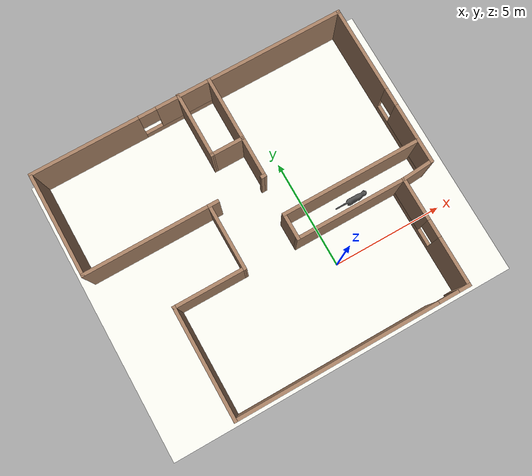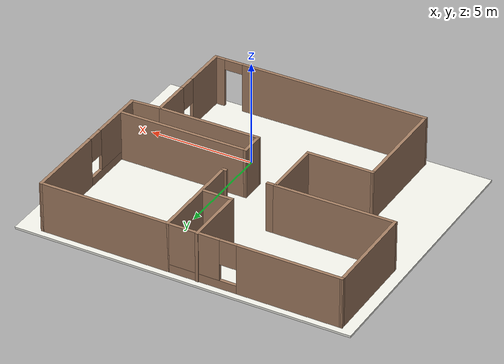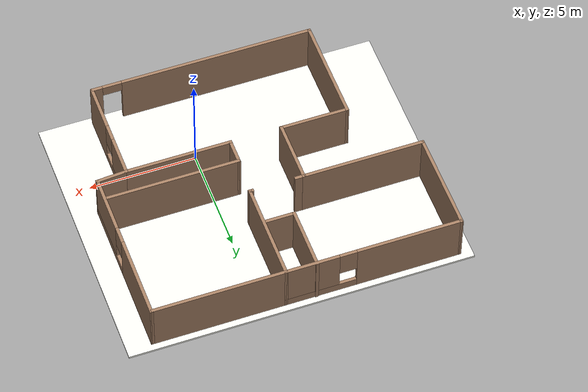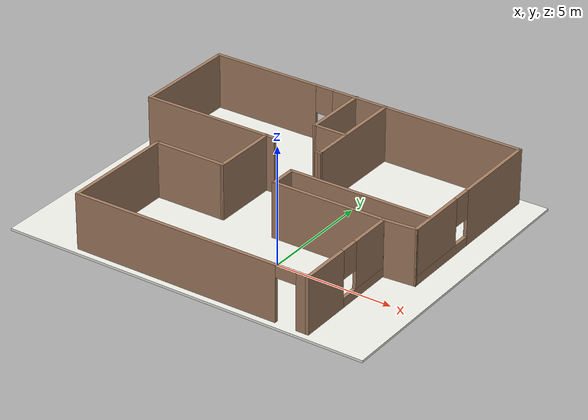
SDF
<sdf version='1.12'>
  <world name='default'>
    <gravity>0 0 -9.800</gravity>
    <magnetic_field>0.000 0.000 -0.000</magnetic_field>
    <atmosphere type='adiabatic'/>
    <physics type='ode'>
      <max_step_size>0.001</max_step_size>
      <real_time_factor>1</real_time_factor>
      <real_time_update_rate>1000</real_time_update_rate>
    </physics>

    <plugin
        filename="gz-sim-physics-system"
        name="gz::sim::systems::Physics">
    </plugin>

    <plugin
        filename="gz-sim-user-commands-system"
        name="gz::sim::systems::UserCommands">
    </plugin>

    <plugin
        filename="gz-sim-scene-broadcaster-system"
        name="gz::sim::systems::SceneBroadcaster">
    </plugin>

    <scene>
      <ambient>0.400 0.400 0.400 1</ambient>
      <background>0.700 0.700 0.700 1</background>
      <shadows>true</shadows>
    </scene>

    <model name="cat">
      <pose>2 2 0 0 0 0</pose>
      <static>false</static>

      <link name="body">
        <pose>0 0 0.2 0 0 0</pose>

        <!-- Main cat body visual -->
        <visual name="visual">
          <geometry>
            <mesh>
              <uri>file:///home/ismail/ros2_ws/src/cat_chaser/meshes/cat.dae</uri>
              <scale>0.2 0.2 0.2</scale>
            </mesh>
          </geometry>
          <pose>0 0 0 1.5708 0 0</pose>
          <material>
            <ambient>0.2 0.2 0.2 1</ambient>    <!-- Lighter gray -->
            <diffuse>0.3 0.3 0.3 1</diffuse>    <!-- Much lighter gray -->
            <specular>0.1 0.1 0.1 1</specular>
          </material>
        </visual>

        <!-- Left Eye -->
        <visual name="left_eye">
          <geometry>
            <sphere>
              <radius>0.015</radius>
            </sphere>
          </geometry>
          <!-- Cat's face is on positive X, eyes should be high up on Z -->
          <pose>0.505 -0.0345 0.564 1.5708 0 0</pose>
          <material>
            <ambient>1.0 0.8 0.0 1</ambient>
            <diffuse>1.0 0.9 0.2 1</diffuse>
            <specular>1.0 1.0 1.0 1</specular>
            <emissive>0.3 0.2 0.0 1</emissive>
          </material>
        </visual>

        <!-- Right Eye -->
        <visual name="right_eye">
          <geometry>
            <sphere>
              <radius>0.015</radius>
            </sphere>
          </geometry>
          <pose>0.505 0.0345 0.564 1.5708 0 0</pose>
          <material>
            <ambient>1.0 0.8 0.0 1</ambient>
            <diffuse>1.0 0.9 0.2 1</diffuse>
            <specular>1.0 1.0 1.0 1</specular>
            <emissive>0.3 0.2 0.0 1</emissive>
          </material>
        </visual>

        <!-- Left Eye Pupil -->
        <visual name="left_pupil">
          <geometry>
            <sphere>
              <radius>0.008</radius>
            </sphere>
          </geometry>
          <pose>0.5133 -0.0345 0.564 1.5708 0 0</pose>
          <material>
            <ambient>0.0 0.0 0.0 1</ambient>
            <diffuse>0.0 0.0 0.0 1</diffuse>
            <specular>0.0 0.0 0.0 1</specular>
          </material>
        </visual>

        <!-- Right Eye Pupil -->
        <visual name="right_pupil">
          <geometry>
            <sphere>
              <radius>0.008</radius>
            </sphere>
          </geometry>
          <pose>0.5133 0.0345 0.564 1.5708 0 0</pose>
          <material>
            <ambient>0.0 0.0 0.0 1</ambient>
            <diffuse>0.0 0.0 0.0 1</diffuse>
            <specular>0.0 0.0 0.0 1</specular>
          </material>
        </visual>

        <!-- Left Whiskers -->
        <visual name="left_whisker_1">
          <geometry>
            <cylinder>
              <radius>0.001</radius>
              <length>0.08</length>
            </cylinder>
          </geometry>
          <pose>0.548 -0.024 0.5123 1.5708 0 0</pose>
          <material>
            <ambient>1.0 1.0 1.0 1</ambient>
            <diffuse>1.0 1.0 1.0 1</diffuse>
            <specular>1.0 1.0 1.0 1</specular>
            <emissive>0.2 0.2 0.2 1</emissive>
          </material>
        </visual>

        <visual name="left_whisker_2">
          <geometry>
            <cylinder>
              <radius>0.001</radius>
              <length>0.08</length>
            </cylinder>
          </geometry>
          <pose>0.548 -0.024 0.505 1.5708 0 0</pose>
          <material>
            <ambient>1.0 1.0 1.0 1</ambient>
            <diffuse>1.0 1.0 1.0 1</diffuse>
            <specular>1.0 1.0 1.0 1</specular>
            <emissive>0.2 0.2 0.2 1</emissive>
          </material>
        </visual>

        <!-- Right Whiskers -->
        <visual name="right_whisker_1">
          <geometry>
            <cylinder>
              <radius>0.001</radius>
              <length>0.08</length>
            </cylinder>
          </geometry>
          <pose>0.548 0.024 0.5123 1.5708 0 0</pose>
          <material>
            <ambient>1.0 1.0 1.0 1</ambient>
            <diffuse>1.0 1.0 1.0 1</diffuse>
            <specular>1.0 1.0 1.0 1</specular>
            <emissive>0.2 0.2 0.2 1</emissive>
          </material>
        </visual>

        <visual name="right_whisker_2">
          <geometry>
            <cylinder>
              <radius>0.001</radius>
              <length>0.08</length>
            </cylinder>
          </geometry>
          <pose>0.548 0.024 0.505 1.5708 0 0</pose>
          <material>
            <ambient>1.0 1.0 1.0 1</ambient>
            <diffuse>1.0 1.0 1.0 1</diffuse>
            <specular>1.0 1.0 1.0 1</specular>
            <emissive>0.2 0.2 0.2 1</emissive>
          </material>
        </visual>

        <!-- Pink Nose -->
        <visual name="nose">
          <geometry>
            <sphere>
              <radius>0.008</radius>
            </sphere>
          </geometry>
          <pose>0.548 0 0.515 1.5708 0 0</pose>
          <material>
            <ambient>1.0 0.2 0.4 1</ambient>
            <diffuse>1.0 0.4 0.6 1</diffuse>
            <specular>0.5 0.5 0.5 1</specular>
            <emissive>0.2 0.05 0.1 1</emissive>
          </material>
        </visual>

        <!-- Collision (same as before) -->
        <collision name="collision">
          <geometry>
            <box>
              <size>0.12 0.06 0.09</size>
            </box>
          </geometry>
          <pose>0 0 0 1.5708 0 0</pose>
        </collision>

        <!-- Inertial properties (same as before) -->
        <inertial>
          <mass>1.0</mass>
          <pose>0 0 0 0 0 0</pose>
          <inertia>
            <ixx>0.01</ixx>
            <ixy>0.0</ixy>
            <ixz>0.0</ixz>
            <iyy>0.02</iyy>
            <iyz>0.0</iyz>
            <izz>0.02</izz>
          </inertia>
        </inertial>
      </link>
    </model>

    <model name='ismail_home2'>
      <pose>-1.769 2.788 0 0 0 0.000</pose>
      <link name='Wall_1'>
        <pose>5.459 -3.741 0 0 0 1.571</pose>
        <visual name='Wall_1_Visual_0'>
          <pose>-1.384 0 1.250 0 0 0</pose>
          <geometry>
            <box>
              <size>2.233 0.150 2.500</size>
            </box>
          </geometry>
          <material>
            <ambient>0.647 0.498 0.388 1</ambient>
            <diffuse>0.647 0.498 0.388 1</diffuse>
            <specular>0.100 0.100 0.100 1</specular>
          </material>
          <meta>
            <layer>0</layer>
          </meta>
        </visual>
        <collision name='Wall_1_Collision_0'>
          <geometry>
            <box>
              <size>2.233 0.150 2.500</size>
            </box>
          </geometry>
          <pose>-1.384 0 1.250 0 0 0</pose>
          <surface>
            <friction>
              <ode/>
            </friction>
            <bounce/>
            <contact/>
          </surface>
        </collision>
        <visual name='Wall_1_Visual_1'>
          <pose>1.116 0 0.250 0 0 0</pose>
          <geometry>
            <box>
              <size>2.767 0.150 0.500</size>
            </box>
          </geometry>
          <material>
            <ambient>0.647 0.498 0.388 1</ambient>
            <diffuse>0.647 0.498 0.388 1</diffuse>
            <specular>0.100 0.100 0.100 1</specular>
          </material>
          <meta>
            <layer>0</layer>
          </meta>
        </visual>
        <collision name='Wall_1_Collision_1'>
          <geometry>
            <box>
              <size>2.767 0.150 0.500</size>
            </box>
          </geometry>
          <pose>1.116 0 0.250 0 0 0</pose>
          <surface>
            <friction>
              <ode/>
            </friction>
            <bounce/>
            <contact/>
          </surface>
        </collision>
        <visual name='Wall_1_Visual_2'>
          <pose>1.516 0 1.500 0 0 0</pose>
          <geometry>
            <box>
              <size>1.967 0.150 2.000</size>
            </box>
          </geometry>
          <material>
            <ambient>0.647 0.498 0.388 1</ambient>
            <diffuse>0.647 0.498 0.388 1</diffuse>
            <specular>0.100 0.100 0.100 1</specular>
          </material>
          <meta>
            <layer>0</layer>
          </meta>
        </visual>
        <collision name='Wall_1_Collision_2'>
          <geometry>
            <box>
              <size>1.967 0.150 2.000</size>
            </box>
          </geometry>
          <pose>1.516 0 1.500 0 0 0</pose>
          <surface>
            <friction>
              <ode/>
            </friction>
            <bounce/>
            <contact/>
          </surface>
        </collision>
        <visual name='Wall_1_Visual_3'>
          <pose>0.133 0 1.900 0 0 0</pose>
          <geometry>
            <box>
              <size>0.800 0.150 1.200</size>
            </box>
          </geometry>
          <material>
            <ambient>0.647 0.498 0.388 1</ambient>
            <diffuse>0.647 0.498 0.388 1</diffuse>
            <specular>0.100 0.100 0.100 1</specular>
          </material>
          <meta>
            <layer>0</layer>
          </meta>
        </visual>
        <collision name='Wall_1_Collision_3'>
          <geometry>
            <box>
              <size>0.800 0.150 1.200</size>
            </box>
          </geometry>
          <pose>0.133 0 1.900 0 0 0</pose>
          <surface>
            <friction>
              <ode/>
            </friction>
            <bounce/>
            <contact/>
          </surface>
        </collision>
        <inertial>
          <pose>0 0 0 0 0 0</pose>
          <mass>1</mass>
          <inertia>
            <ixx>1</ixx>
            <ixy>0</ixy>
            <ixz>0</ixz>
            <iyy>1</iyy>
            <iyz>0</iyz>
            <izz>1</izz>
          </inertia>
        </inertial>
        <enable_wind>false</enable_wind>
      </link>
      <link name='Wall_10'>
        <collision name='Wall_10_Collision'>
          <geometry>
            <box>
              <size>5.000 0.150 2.500</size>
            </box>
          </geometry>
          <pose>0 0 1.250 0 0 0</pose>
          <surface>
            <friction>
              <ode/>
            </friction>
            <bounce/>
            <contact/>
          </surface>
        </collision>
        <visual name='Wall_10_Visual'>
          <pose>0 0 1.250 0 0 0</pose>
          <geometry>
            <box>
              <size>5.000 0.150 2.500</size>
            </box>
          </geometry>
          <material>
            <ambient>0.647 0.498 0.388 1</ambient>
            <diffuse>0.647 0.498 0.388 1</diffuse>
            <specular>0.100 0.100 0.100 1</specular>
          </material>
          <meta>
            <layer>0</layer>
          </meta>
        </visual>
        <pose>-4.891 -3.741 0 0 0 1.571</pose>
        <inertial>
          <pose>0 0 0 0 0 0</pose>
          <mass>1</mass>
          <inertia>
            <ixx>1</ixx>
            <ixy>0</ixy>
            <ixz>0</ixz>
            <iyy>1</iyy>
            <iyz>0</iyz>
            <izz>1</izz>
          </inertia>
        </inertial>
        <enable_wind>false</enable_wind>
      </link>
      <link name='Wall_11'>
        <collision name='Wall_11_Collision'>
          <geometry>
            <box>
              <size>3.250 0.150 2.500</size>
            </box>
          </geometry>
          <pose>0 0 1.250 0 0 0</pose>
          <surface>
            <friction>
              <ode/>
            </friction>
            <bounce/>
            <contact/>
          </surface>
        </collision>
        <visual name='Wall_11_Visual'>
          <pose>0 0 1.250 0 0 0</pose>
          <geometry>
            <box>
              <size>3.250 0.150 2.500</size>
            </box>
          </geometry>
          <material>
            <ambient>0.647 0.498 0.388 1</ambient>
            <diffuse>0.647 0.498 0.388 1</diffuse>
            <specular>0.100 0.100 0.100 1</specular>
          </material>
          <meta>
            <layer>0</layer>
          </meta>
        </visual>
        <pose>-3.341 -1.316 0 0 0 0.000</pose>
        <inertial>
          <pose>0 0 0 0 0 0</pose>
          <mass>1</mass>
          <inertia>
            <ixx>1</ixx>
            <ixy>0</ixy>
            <ixz>0</ixz>
            <iyy>1</iyy>
            <iyz>0</iyz>
            <izz>1</izz>
          </inertia>
        </inertial>
        <enable_wind>false</enable_wind>
      </link>
      <link name='Wall_12'>
        <collision name='Wall_12_Collision'>
          <geometry>
            <box>
              <size>3.000 0.150 2.500</size>
            </box>
          </geometry>
          <pose>0 0 1.250 0 0 0</pose>
          <surface>
            <friction>
              <ode/>
            </friction>
            <bounce/>
            <contact/>
          </surface>
        </collision>
        <visual name='Wall_12_Visual'>
          <pose>0 0 1.250 0 0 0</pose>
          <geometry>
            <box>
              <size>3.000 0.150 2.500</size>
            </box>
          </geometry>
          <material>
            <ambient>0.647 0.498 0.388 1</ambient>
            <diffuse>0.647 0.498 0.388 1</diffuse>
            <specular>0.100 0.100 0.100 1</specular>
          </material>
          <meta>
            <layer>0</layer>
          </meta>
        </visual>
        <pose>-1.791 0.109 0 0 0 1.571</pose>
        <inertial>
          <pose>0 0 0 0 0 0</pose>
          <mass>1</mass>
          <inertia>
            <ixx>1</ixx>
            <ixy>0</ixy>
            <ixz>0</ixz>
            <iyy>1</iyy>
            <iyz>0</iyz>
            <izz>1</izz>
          </inertia>
        </inertial>
        <enable_wind>false</enable_wind>
      </link>
      <link name='Wall_13'>
        <collision name='Wall_13_Collision'>
          <geometry>
            <box>
              <size>5.750 0.150 2.500</size>
            </box>
          </geometry>
          <pose>0 0 1.250 0 0 0</pose>
          <surface>
            <friction>
              <ode/>
            </friction>
            <bounce/>
            <contact/>
          </surface>
        </collision>
        <visual name='Wall_13_Visual'>
          <pose>0 0 1.250 0 0 0</pose>
          <geometry>
            <box>
              <size>5.750 0.150 2.500</size>
            </box>
          </geometry>
          <material>
            <ambient>0.647 0.498 0.388 1</ambient>
            <diffuse>0.647 0.498 0.388 1</diffuse>
            <specular>0.100 0.100 0.100 1</specular>
          </material>
          <meta>
            <layer>0</layer>
          </meta>
        </visual>
        <pose>-4.591 1.534 0 0 0 3.142</pose>
        <inertial>
          <pose>0 0 0 0 0 0</pose>
          <mass>1</mass>
          <inertia>
            <ixx>1</ixx>
            <ixy>0</ixy>
            <ixz>0</ixz>
            <iyy>1</iyy>
            <iyz>0</iyz>
            <izz>1</izz>
          </inertia>
        </inertial>
        <enable_wind>false</enable_wind>
      </link>
      <link name='Wall_14'>
        <collision name='Wall_14_Collision'>
          <geometry>
            <box>
              <size>4.750 0.150 2.500</size>
            </box>
          </geometry>
          <pose>0 0 1.250 0 0 0</pose>
          <surface>
            <friction>
              <ode/>
            </friction>
            <bounce/>
            <contact/>
          </surface>
        </collision>
        <visual name='Wall_14_Visual'>
          <pose>0 0 1.250 0 0 0</pose>
          <geometry>
            <box>
              <size>4.750 0.150 2.500</size>
            </box>
          </geometry>
          <material>
            <ambient>0.647 0.498 0.388 1</ambient>
            <diffuse>0.647 0.498 0.388 1</diffuse>
            <specular>0.100 0.100 0.100 1</specular>
          </material>
          <meta>
            <layer>0</layer>
          </meta>
        </visual>
        <pose>-7.391 3.834 0 0 0 1.571</pose>
        <inertial>
          <pose>0 0 0 0 0 0</pose>
          <mass>1</mass>
          <inertia>
            <ixx>1</ixx>
            <ixy>0</ixy>
            <ixz>0</ixz>
            <iyy>1</iyy>
            <iyz>0</iyz>
            <izz>1</izz>
          </inertia>
        </inertial>
        <enable_wind>false</enable_wind>
      </link>
      <link name='Wall_15'>
        <pose>-3.341 6.134 0 0 0 0.000</pose>
        <visual name='Wall_15_Visual_0'>
          <pose>-1.667 0 1.250 0 0 0</pose>
          <geometry>
            <box>
              <size>4.917 0.150 2.500</size>
            </box>
          </geometry>
          <material>
            <ambient>0.647 0.498 0.388 1</ambient>
            <diffuse>0.647 0.498 0.388 1</diffuse>
            <specular>0.100 0.100 0.100 1</specular>
          </material>
          <meta>
            <layer>0</layer>
          </meta>
        </visual>
        <collision name='Wall_15_Collision_0'>
          <geometry>
            <box>
              <size>4.917 0.150 2.500</size>
            </box>
          </geometry>
          <pose>-1.667 0 1.250 0 0 0</pose>
          <surface>
            <friction>
              <ode/>
            </friction>
            <bounce/>
            <contact/>
          </surface>
        </collision>
        <visual name='Wall_15_Visual_1'>
          <pose>2.458 0 0.250 0 0 0</pose>
          <geometry>
            <box>
              <size>3.333 0.150 0.500</size>
            </box>
          </geometry>
          <material>
            <ambient>0.647 0.498 0.388 1</ambient>
            <diffuse>0.647 0.498 0.388 1</diffuse>
            <specular>0.100 0.100 0.100 1</specular>
          </material>
          <meta>
            <layer>0</layer>
          </meta>
        </visual>
        <collision name='Wall_15_Collision_1'>
          <geometry>
            <box>
              <size>3.333 0.150 0.500</size>
            </box>
          </geometry>
          <pose>2.458 0 0.250 0 0 0</pose>
          <surface>
            <friction>
              <ode/>
            </friction>
            <bounce/>
            <contact/>
          </surface>
        </collision>
        <visual name='Wall_15_Visual_2'>
          <pose>2.858 0 1.500 0 0 0</pose>
          <geometry>
            <box>
              <size>2.533 0.150 2.000</size>
            </box>
          </geometry>
          <material>
            <ambient>0.647 0.498 0.388 1</ambient>
            <diffuse>0.647 0.498 0.388 1</diffuse>
            <specular>0.100 0.100 0.100 1</specular>
          </material>
          <meta>
            <layer>0</layer>
          </meta>
        </visual>
        <collision name='Wall_15_Collision_2'>
          <geometry>
            <box>
              <size>2.533 0.150 2.000</size>
            </box>
          </geometry>
          <pose>2.858 0 1.500 0 0 0</pose>
          <surface>
            <friction>
              <ode/>
            </friction>
            <bounce/>
            <contact/>
          </surface>
        </collision>
        <visual name='Wall_15_Visual_3'>
          <pose>1.192 0 1.900 0 0 0</pose>
          <geometry>
            <box>
              <size>0.800 0.150 1.200</size>
            </box>
          </geometry>
          <material>
            <ambient>0.647 0.498 0.388 1</ambient>
            <diffuse>0.647 0.498 0.388 1</diffuse>
            <specular>0.100 0.100 0.100 1</specular>
          </material>
          <meta>
            <layer>0</layer>
          </meta>
        </visual>
        <collision name='Wall_15_Collision_3'>
          <geometry>
            <box>
              <size>0.800 0.150 1.200</size>
            </box>
          </geometry>
          <pose>1.192 0 1.900 0 0 0</pose>
          <surface>
            <friction>
              <ode/>
            </friction>
            <bounce/>
            <contact/>
          </surface>
        </collision>
        <inertial>
          <pose>0 0 0 0 0 0</pose>
          <mass>1</mass>
          <inertia>
            <ixx>1</ixx>
            <ixy>0</ixy>
            <ixz>0</ixz>
            <iyy>1</iyy>
            <iyz>0</iyz>
            <izz>1</izz>
          </inertia>
        </inertial>
        <enable_wind>false</enable_wind>
      </link>
      <link name='Wall_16'>
        <collision name='Wall_16_Collision'>
          <geometry>
            <box>
              <size>4.750 0.150 2.500</size>
            </box>
          </geometry>
          <pose>0 0 1.250 0 0 0</pose>
          <surface>
            <friction>
              <ode/>
            </friction>
            <bounce/>
            <contact/>
          </surface>
        </collision>
        <visual name='Wall_16_Visual'>
          <pose>0 0 1.250 0 0 0</pose>
          <geometry>
            <box>
              <size>4.750 0.150 2.500</size>
            </box>
          </geometry>
          <material>
            <ambient>0.647 0.498 0.388 1</ambient>
            <diffuse>0.647 0.498 0.388 1</diffuse>
            <specular>0.100 0.100 0.100 1</specular>
          </material>
          <meta>
            <layer>0</layer>
          </meta>
        </visual>
        <pose>0.709 3.834 0 0 0 -1.571</pose>
        <inertial>
          <pose>0 0 0 0 0 0</pose>
          <mass>1</mass>
          <inertia>
            <ixx>1</ixx>
            <ixy>0</ixy>
            <ixz>0</ixz>
            <iyy>1</iyy>
            <iyz>0</iyz>
            <izz>1</izz>
          </inertia>
        </inertial>
        <enable_wind>false</enable_wind>
      </link>
      <link name='Wall_22'>
        <collision name='Wall_22_Collision'>
          <geometry>
            <box>
              <size>1.250 0.150 2.500</size>
            </box>
          </geometry>
          <pose>0 0 1.250 0 0 0</pose>
          <surface>
            <friction>
              <ode/>
            </friction>
            <bounce/>
            <contact/>
          </surface>
        </collision>
        <visual name='Wall_22_Visual'>
          <pose>0 0 1.250 0 0 0</pose>
          <geometry>
            <box>
              <size>1.250 0.150 2.500</size>
            </box>
          </geometry>
          <material>
            <ambient>0.647 0.498 0.388 1</ambient>
            <diffuse>0.647 0.498 0.388 1</diffuse>
            <specular>0.100 0.100 0.100 1</specular>
          </material>
          <meta>
            <layer>0</layer>
          </meta>
        </visual>
        <pose>0.609 -0.766 0 0 0 1.571</pose>
        <inertial>
          <pose>0 0 0 0 0 0</pose>
          <mass>1</mass>
          <inertia>
            <ixx>1</ixx>
            <ixy>0</ixy>
            <ixz>0</ixz>
            <iyy>1</iyy>
            <iyz>0</iyz>
            <izz>1</izz>
          </inertia>
        </inertial>
        <enable_wind>false</enable_wind>
      </link>
      <link name='Wall_24'>
        <collision name='Wall_24_Collision'>
          <geometry>
            <box>
              <size>0.500 0.150 2.500</size>
            </box>
          </geometry>
          <pose>0 0 1.250 0 0 0</pose>
          <surface>
            <friction>
              <ode/>
            </friction>
            <bounce/>
            <contact/>
          </surface>
        </collision>
        <visual name='Wall_24_Visual'>
          <pose>0 0 1.250 0 0 0</pose>
          <geometry>
            <box>
              <size>0.500 0.150 2.500</size>
            </box>
          </geometry>
          <material>
            <ambient>0.647 0.498 0.388 1</ambient>
            <diffuse>0.647 0.498 0.388 1</diffuse>
            <specular>0.100 0.100 0.100 1</specular>
          </material>
          <meta>
            <layer>0</layer>
          </meta>
        </visual>
        <pose>-1.616 1.534 0 0 0 0.000</pose>
        <inertial>
          <pose>0 0 0 0 0 0</pose>
          <mass>1</mass>
          <inertia>
            <ixx>1</ixx>
            <ixy>0</ixy>
            <ixz>0</ixz>
            <iyy>1</iyy>
            <iyz>0</iyz>
            <izz>1</izz>
          </inertia>
        </inertial>
        <enable_wind>false</enable_wind>
      </link>
      <link name='Wall_27'>
        <collision name='Wall_27_Collision'>
          <geometry>
            <box>
              <size>0.250 0.150 2.500</size>
            </box>
          </geometry>
          <pose>0 0 1.250 0 0 0</pose>
          <surface>
            <friction>
              <ode/>
            </friction>
            <bounce/>
            <contact/>
          </surface>
        </collision>
        <visual name='Wall_27_Visual'>
          <pose>0 0 1.250 0 0 0</pose>
          <geometry>
            <box>
              <size>0.250 0.150 2.500</size>
            </box>
          </geometry>
          <material>
            <ambient>0.647 0.498 0.388 1</ambient>
            <diffuse>0.647 0.498 0.388 1</diffuse>
            <specular>0.100 0.100 0.100 1</specular>
          </material>
          <meta>
            <layer>0</layer>
          </meta>
        </visual>
        <pose>0.659 1.534 0 0 0 3.142</pose>
        <inertial>
          <pose>0 0 0 0 0 0</pose>
          <mass>1</mass>
          <inertia>
            <ixx>1</ixx>
            <ixy>0</ixy>
            <ixz>0</ixz>
            <iyy>1</iyy>
            <iyz>0</iyz>
            <izz>1</izz>
          </inertia>
        </inertial>
        <enable_wind>false</enable_wind>
      </link>
      <link name='Wall_3'>
        <collision name='Wall_3_Collision'>
          <geometry>
            <box>
              <size>5.000 0.150 2.500</size>
            </box>
          </geometry>
          <pose>0 0 1.250 0 0 0</pose>
          <surface>
            <friction>
              <ode/>
            </friction>
            <bounce/>
            <contact/>
          </surface>
        </collision>
        <visual name='Wall_3_Visual'>
          <pose>0 0 1.250 0 0 0</pose>
          <geometry>
            <box>
              <size>5.000 0.150 2.500</size>
            </box>
          </geometry>
          <material>
            <ambient>0.647 0.498 0.388 1</ambient>
            <diffuse>0.647 0.498 0.388 1</diffuse>
            <specular>0.100 0.100 0.100 1</specular>
          </material>
          <meta>
            <layer>0</layer>
          </meta>
        </visual>
        <pose>3.034 -1.316 0 0 0 3.142</pose>
        <inertial>
          <pose>0 0 0 0 0 0</pose>
          <mass>1</mass>
          <inertia>
            <ixx>1</ixx>
            <ixy>0</ixy>
            <ixz>0</ixz>
            <iyy>1</iyy>
            <iyz>0</iyz>
            <izz>1</izz>
          </inertia>
        </inertial>
        <enable_wind>false</enable_wind>
      </link>
      <link name='Wall_6'>
        <pose>0.284 -6.166 0 0 0 3.142</pose>
        <visual name='Wall_6_Visual_0'>
          <pose>-4.975 0 1.250 0 0 0</pose>
          <geometry>
            <box>
              <size>0.550 0.150 2.500</size>
            </box>
          </geometry>
          <material>
            <ambient>0.647 0.498 0.388 1</ambient>
            <diffuse>0.647 0.498 0.388 1</diffuse>
            <specular>0.100 0.100 0.100 1</specular>
          </material>
          <meta>
            <layer>0</layer>
          </meta>
        </visual>
        <collision name='Wall_6_Collision_0'>
          <geometry>
            <box>
              <size>0.550 0.150 2.500</size>
            </box>
          </geometry>
          <pose>-4.975 0 1.250 0 0 0</pose>
          <surface>
            <friction>
              <ode/>
            </friction>
            <bounce/>
            <contact/>
          </surface>
        </collision>
        <visual name='Wall_6_Visual_1'>
          <pose>0.725 0 1.250 0 0 0</pose>
          <geometry>
            <box>
              <size>9.050 0.150 2.500</size>
            </box>
          </geometry>
          <material>
            <ambient>0.647 0.498 0.388 1</ambient>
            <diffuse>0.647 0.498 0.388 1</diffuse>
            <specular>0.100 0.100 0.100 1</specular>
          </material>
          <meta>
            <layer>0</layer>
          </meta>
        </visual>
        <collision name='Wall_6_Collision_1'>
          <geometry>
            <box>
              <size>9.050 0.150 2.500</size>
            </box>
          </geometry>
          <pose>0.725 0 1.250 0 0 0</pose>
          <surface>
            <friction>
              <ode/>
            </friction>
            <bounce/>
            <contact/>
          </surface>
        </collision>
        <visual name='Wall_6_Visual_2'>
          <pose>-4.250 0 2.250 0 0 0</pose>
          <geometry>
            <box>
              <size>0.900 0.150 0.500</size>
            </box>
          </geometry>
          <material>
            <ambient>0.647 0.498 0.388 1</ambient>
            <diffuse>0.647 0.498 0.388 1</diffuse>
            <specular>0.100 0.100 0.100 1</specular>
          </material>
          <meta>
            <layer>0</layer>
          </meta>
        </visual>
        <collision name='Wall_6_Collision_2'>
          <geometry>
            <box>
              <size>0.900 0.150 0.500</size>
            </box>
          </geometry>
          <pose>-4.250 0 2.250 0 0 0</pose>
          <surface>
            <friction>
              <ode/>
            </friction>
            <bounce/>
            <contact/>
          </surface>
        </collision>
        <inertial>
          <pose>0 0 0 0 0 0</pose>
          <mass>1</mass>
          <inertia>
            <ixx>1</ixx>
            <ixy>0</ixy>
            <ixz>0</ixz>
            <iyy>1</iyy>
            <iyz>0</iyz>
            <izz>1</izz>
          </inertia>
        </inertial>
        <enable_wind>false</enable_wind>
      </link>
      <link name='Wall_67'>
        <collision name='Wall_67_Collision'>
          <geometry>
            <box>
              <size>6.250 0.150 2.500</size>
            </box>
          </geometry>
          <pose>0 0 1.250 0 0 0</pose>
          <surface>
            <friction>
              <ode/>
            </friction>
            <bounce/>
            <contact/>
          </surface>
        </collision>
        <visual name='Wall_67_Visual'>
          <pose>0 0 1.250 0 0 0</pose>
          <geometry>
            <box>
              <size>6.250 0.150 2.500</size>
            </box>
          </geometry>
          <material>
            <ambient>0.647 0.498 0.388 1</ambient>
            <diffuse>0.647 0.498 0.388 1</diffuse>
            <specular>0.100 0.100 0.100 1</specular>
          </material>
          <meta>
            <layer>0</layer>
          </meta>
        </visual>
        <pose>3.759 6.134 0 0 0 0.000</pose>
        <inertial>
          <pose>0 0 0 0 0 0</pose>
          <mass>1</mass>
          <inertia>
            <ixx>1</ixx>
            <ixy>0</ixy>
            <ixz>0</ixz>
            <iyy>1</iyy>
            <iyz>0</iyz>
            <izz>1</izz>
          </inertia>
        </inertial>
        <enable_wind>false</enable_wind>
      </link>
      <link name='Wall_68'>
        <pose>6.809 2.459 0 0 0 -1.571</pose>
        <visual name='Wall_68_Visual_0'>
          <pose>-1.784 0 1.250 0 0 0</pose>
          <geometry>
            <box>
              <size>3.932 0.150 2.500</size>
            </box>
          </geometry>
          <material>
            <ambient>0.647 0.498 0.388 1</ambient>
            <diffuse>0.647 0.498 0.388 1</diffuse>
            <specular>0.100 0.100 0.100 1</specular>
          </material>
          <meta>
            <layer>0</layer>
          </meta>
        </visual>
        <collision name='Wall_68_Collision_0'>
          <geometry>
            <box>
              <size>3.932 0.150 2.500</size>
            </box>
          </geometry>
          <pose>-1.784 0 1.250 0 0 0</pose>
          <surface>
            <friction>
              <ode/>
            </friction>
            <bounce/>
            <contact/>
          </surface>
        </collision>
        <visual name='Wall_68_Visual_1'>
          <pose>1.966 0 0.250 0 0 0</pose>
          <geometry>
            <box>
              <size>3.568 0.150 0.500</size>
            </box>
          </geometry>
          <material>
            <ambient>0.647 0.498 0.388 1</ambient>
            <diffuse>0.647 0.498 0.388 1</diffuse>
            <specular>0.100 0.100 0.100 1</specular>
          </material>
          <meta>
            <layer>0</layer>
          </meta>
        </visual>
        <collision name='Wall_68_Collision_1'>
          <geometry>
            <box>
              <size>3.568 0.150 0.500</size>
            </box>
          </geometry>
          <pose>1.966 0 0.250 0 0 0</pose>
          <surface>
            <friction>
              <ode/>
            </friction>
            <bounce/>
            <contact/>
          </surface>
        </collision>
        <visual name='Wall_68_Visual_2'>
          <pose>2.366 0 1.500 0 0 0</pose>
          <geometry>
            <box>
              <size>2.768 0.150 2.000</size>
            </box>
          </geometry>
          <material>
            <ambient>0.647 0.498 0.388 1</ambient>
            <diffuse>0.647 0.498 0.388 1</diffuse>
            <specular>0.100 0.100 0.100 1</specular>
          </material>
          <meta>
            <layer>0</layer>
          </meta>
        </visual>
        <collision name='Wall_68_Collision_2'>
          <geometry>
            <box>
              <size>2.768 0.150 2.000</size>
            </box>
          </geometry>
          <pose>2.366 0 1.500 0 0 0</pose>
          <surface>
            <friction>
              <ode/>
            </friction>
            <bounce/>
            <contact/>
          </surface>
        </collision>
        <visual name='Wall_68_Visual_3'>
          <pose>0.582 0 1.900 0 0 0</pose>
          <geometry>
            <box>
              <size>0.800 0.150 1.200</size>
            </box>
          </geometry>
          <material>
            <ambient>0.647 0.498 0.388 1</ambient>
            <diffuse>0.647 0.498 0.388 1</diffuse>
            <specular>0.100 0.100 0.100 1</specular>
          </material>
          <meta>
            <layer>0</layer>
          </meta>
        </visual>
        <collision name='Wall_68_Collision_3'>
          <geometry>
            <box>
              <size>0.800 0.150 1.200</size>
            </box>
          </geometry>
          <pose>0.582 0 1.900 0 0 0</pose>
          <surface>
            <friction>
              <ode/>
            </friction>
            <bounce/>
            <contact/>
          </surface>
        </collision>
        <inertial>
          <pose>0 0 0 0 0 0</pose>
          <mass>1</mass>
          <inertia>
            <ixx>1</ixx>
            <ixy>0</ixy>
            <ixz>0</ixz>
            <iyy>1</iyy>
            <iyz>0</iyz>
            <izz>1</izz>
          </inertia>
        </inertial>
        <enable_wind>false</enable_wind>
      </link>
      <link name='Wall_69'>
        <collision name='Wall_69_Collision'>
          <geometry>
            <box>
              <size>1.504 0.150 2.500</size>
            </box>
          </geometry>
          <pose>0 0 1.250 0 0 0</pose>
          <surface>
            <friction>
              <ode/>
            </friction>
            <bounce/>
            <contact/>
          </surface>
        </collision>
        <visual name='Wall_69_Visual'>
          <pose>0 0 1.250 0 0 0</pose>
          <geometry>
            <box>
              <size>1.504 0.150 2.500</size>
            </box>
          </geometry>
          <material>
            <ambient>0.647 0.498 0.388 1</ambient>
            <diffuse>0.647 0.498 0.388 1</diffuse>
            <specular>0.100 0.100 0.100 1</specular>
          </material>
          <meta>
            <layer>0</layer>
          </meta>
        </visual>
        <pose>6.134 -1.266 0 0 0 -3.068</pose>
        <inertial>
          <pose>0 0 0 0 0 0</pose>
          <mass>1</mass>
          <inertia>
            <ixx>1</ixx>
            <ixy>0</ixy>
            <ixz>0</ixz>
            <iyy>1</iyy>
            <iyz>0</iyz>
            <izz>1</izz>
          </inertia>
        </inertial>
        <enable_wind>false</enable_wind>
      </link>
      <link name='Wall_71'>
        <collision name='Wall_71_Collision'>
          <geometry>
            <box>
              <size>3.000 0.150 2.500</size>
            </box>
          </geometry>
          <pose>0 0 1.250 0 0 0</pose>
          <surface>
            <friction>
              <ode/>
            </friction>
            <bounce/>
            <contact/>
          </surface>
        </collision>
        <visual name='Wall_71_Visual'>
          <pose>0 0 1.250 0 0 0</pose>
          <geometry>
            <box>
              <size>3.000 0.150 2.500</size>
            </box>
          </geometry>
          <material>
            <ambient>0.647 0.498 0.388 1</ambient>
            <diffuse>0.647 0.498 0.388 1</diffuse>
            <specular>0.100 0.100 0.100 1</specular>
          </material>
          <meta>
            <layer>0</layer>
          </meta>
        </visual>
        <pose>-0.701 4.741 0 0 0 -1.571</pose>
        <inertial>
          <pose>0 0 0 0 0 0</pose>
          <mass>1</mass>
          <inertia>
            <ixx>1</ixx>
            <ixy>0</ixy>
            <ixz>0</ixz>
            <iyy>1</iyy>
            <iyz>0</iyz>
            <izz>1</izz>
          </inertia>
        </inertial>
        <enable_wind>false</enable_wind>
      </link>
      <link name='Wall_72'>
        <collision name='Wall_72_Collision'>
          <geometry>
            <box>
              <size>1.500 0.150 2.500</size>
            </box>
          </geometry>
          <pose>0 0 1.250 0 0 0</pose>
          <surface>
            <friction>
              <ode/>
            </friction>
            <bounce/>
            <contact/>
          </surface>
        </collision>
        <visual name='Wall_72_Visual'>
          <pose>0 0 1.250 0 0 0</pose>
          <geometry>
            <box>
              <size>1.500 0.150 2.500</size>
            </box>
          </geometry>
          <material>
            <ambient>0.647 0.498 0.388 1</ambient>
            <diffuse>0.647 0.498 0.388 1</diffuse>
            <specular>0.100 0.100 0.100 1</specular>
          </material>
          <meta>
            <layer>0</layer>
          </meta>
        </visual>
        <pose>-0.026 3.316 0 0 0 0.000</pose>
        <inertial>
          <pose>0 0 0 0 0 0</pose>
          <mass>1</mass>
          <inertia>
            <ixx>1</ixx>
            <ixy>0</ixy>
            <ixz>0</ixz>
            <iyy>1</iyy>
            <iyz>0</iyz>
            <izz>1</izz>
          </inertia>
        </inertial>
        <enable_wind>false</enable_wind>
      </link>
      <link name='Wall_74'>
        <collision name='Wall_74_Collision'>
          <geometry>
            <box>
              <size>6.250 0.150 2.500</size>
            </box>
          </geometry>
          <pose>0 0 1.250 0 0 0</pose>
          <surface>
            <friction>
              <ode/>
            </friction>
            <bounce/>
            <contact/>
          </surface>
        </collision>
        <visual name='Wall_74_Visual'>
          <pose>0 0 1.250 0 0 0</pose>
          <geometry>
            <box>
              <size>6.250 0.150 2.500</size>
            </box>
          </geometry>
          <material>
            <ambient>0.647 0.498 0.388 1</ambient>
            <diffuse>0.647 0.498 0.388 1</diffuse>
            <specular>0.100 0.100 0.100 1</specular>
          </material>
          <meta>
            <layer>0</layer>
          </meta>
        </visual>
        <pose>3.659 -0.216 0 0 0 0.000</pose>
        <inertial>
          <pose>0 0 0 0 0 0</pose>
          <mass>1</mass>
          <inertia>
            <ixx>1</ixx>
            <ixy>0</ixy>
            <ixz>0</ixz>
            <iyy>1</iyy>
            <iyz>0</iyz>
            <izz>1</izz>
          </inertia>
        </inertial>
        <enable_wind>false</enable_wind>
      </link>
      <link name='Floor'>
        <pose>0 0 0 0 0 0</pose>
        <collision name='Floor_Collision'>
          <geometry>
            <box>
              <size>16.000 13.000 0.100</size>
            </box>
          </geometry>
          <pose>0 0 0.050 0 0 0</pose>
          <surface>
            <friction>
              <ode/>
            </friction>
            <bounce/>
            <contact/>
          </surface>
        </collision>
        <visual name='Floor_Visual'>
          <pose>0 0 0.050 0 0 0</pose>
          <geometry>
            <box>
              <size>16.000 13.000 0.100</size>
            </box>
          </geometry>
          <material>
            <ambient>0.950 0.950 0.920 1</ambient>
            <diffuse>0.950 0.950 0.920 1</diffuse>
            <specular>0.100 0.100 0.100 1</specular>
          </material>
          <meta>
            <layer>0</layer>
          </meta>
        </visual>
        <inertial>
          <pose>0 0 0 0 0 0</pose>
          <mass>1</mass>
          <inertia>
            <ixx>1</ixx>
            <ixy>0</ixy>
            <ixz>0</ixz>
            <iyy>1</iyy>
            <iyz>0</iyz>
            <izz>1</izz>
          </inertia>
        </inertial>
        <enable_wind>false</enable_wind>
      </link>
      <static>true</static>
      <self_collide>false</self_collide>
    </model>
  </world>
</sdf>
